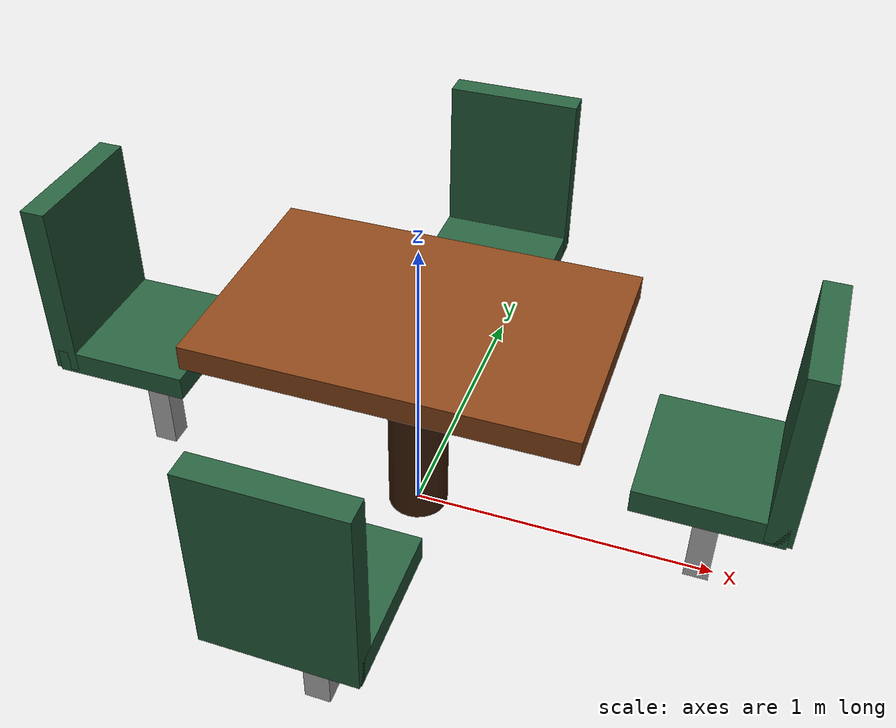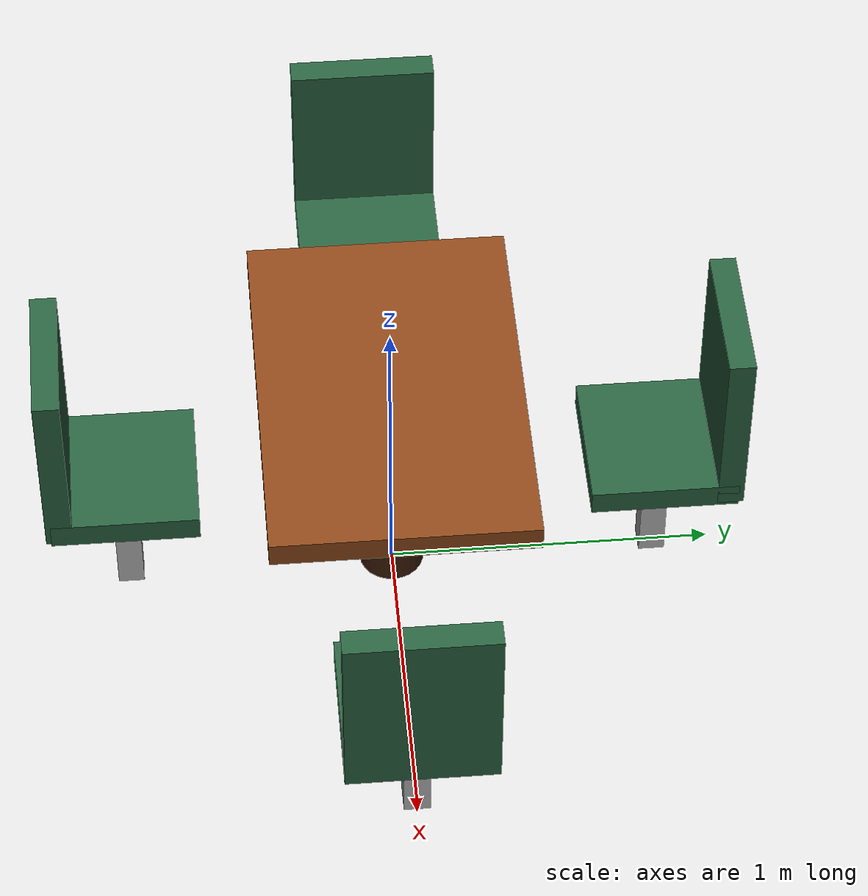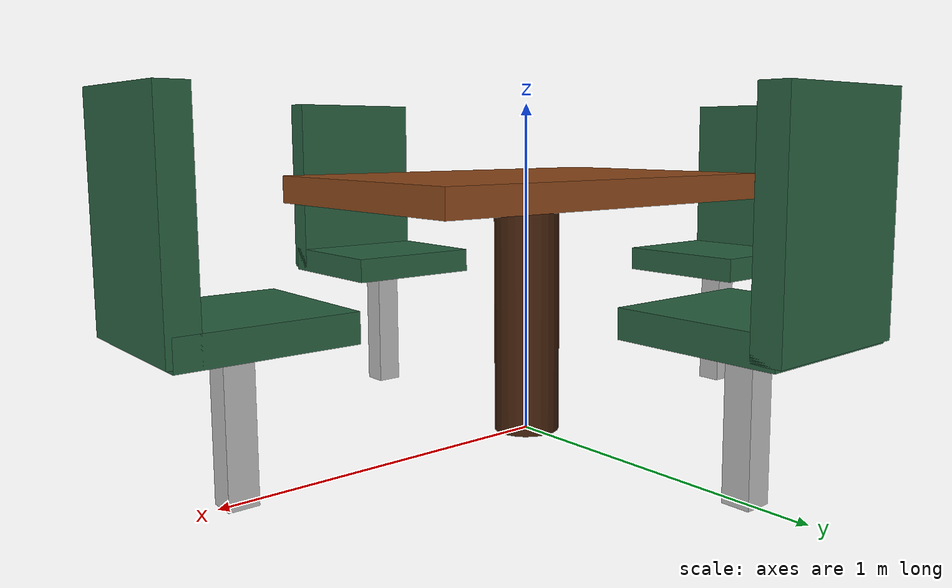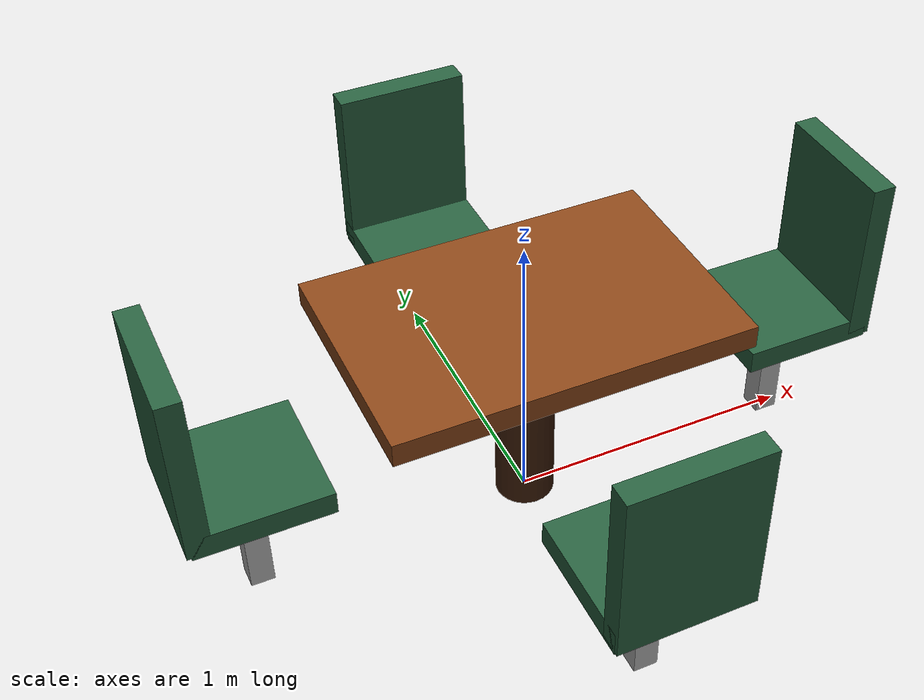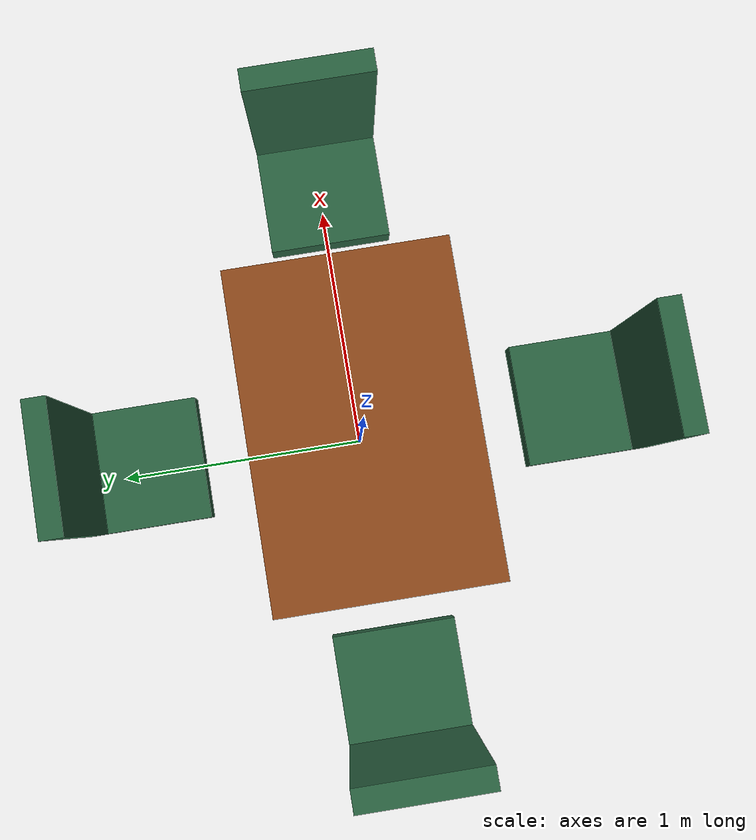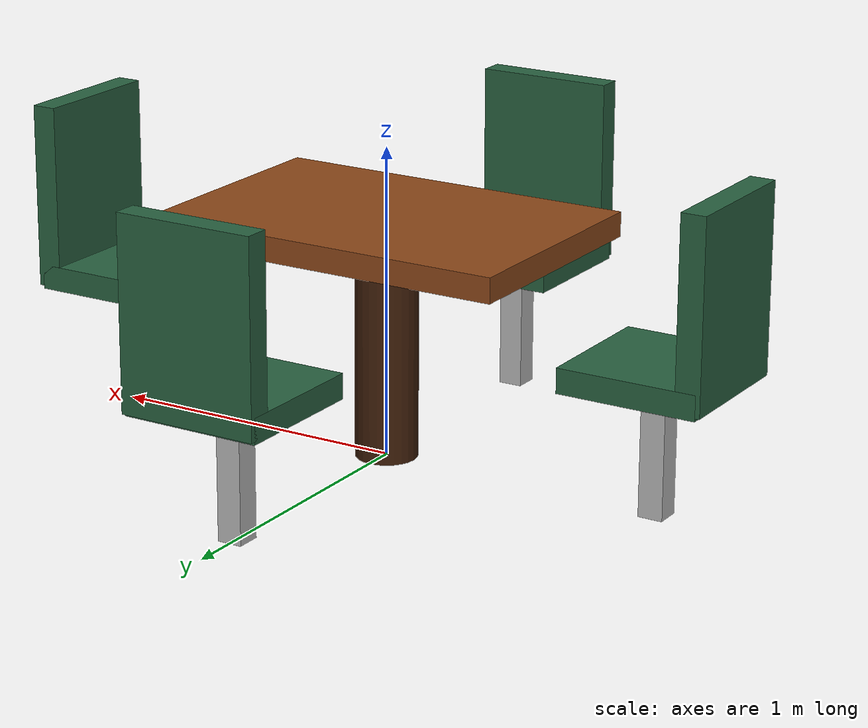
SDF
<?xml version="1.0"?>
<sdf version="1.10">
  <model name="restaurant_table">
    <static>true</static>

    <link name="furniture_link">

      <!-- Volume de collision complet de la table -->
      <collision name="table_collision">
        <pose>0 0 0.38 0 0 0</pose>
        <geometry>
          <box><size>1.2 0.8 0.76</size></box>
        </geometry>
      </collision>

      <!-- Plateau -->
      <visual name="table_top">
        <pose>0 0 0.75 0 0 0</pose>
        <geometry>
          <box><size>1.2 0.8 0.08</size></box>
        </geometry>
        <material>
          <ambient>0.38 0.18 0.07 1</ambient>
          <diffuse>0.55 0.28 0.10 1</diffuse>
        </material>
      </visual>

      <!-- Pied central -->
      <visual name="table_leg">
        <pose>0 0 0.36 0 0 0</pose>
        <geometry>
          <cylinder>
            <radius>0.10</radius>
            <length>0.72</length>
          </cylinder>
        </geometry>
        <material>
          <ambient>0.18 0.08 0.03 1</ambient>
          <diffuse>0.25 0.12 0.04 1</diffuse>
        </material>
      </visual>

      <!-- Chaise nord -->
      <collision name="north_chair_collision">
        <pose>0 0.82 0.4 0 0 0</pose>
        <geometry><box><size>0.45 0.45 0.8</size></box></geometry>
      </collision>
      <visual name="north_chair_seat">
        <pose>0 0.82 0.45 0 0 0</pose>
        <geometry><box><size>0.45 0.45 0.08</size></box></geometry>
        <material>
          <ambient>0.12 0.25 0.18 1</ambient>
          <diffuse>0.16 0.38 0.25 1</diffuse>
        </material>
      </visual>
      <visual name="north_chair_back">
        <pose>0 1.02 0.72 0 0 0</pose>
        <geometry><box><size>0.45 0.08 0.6</size></box></geometry>
        <material>
          <ambient>0.12 0.25 0.18 1</ambient>
          <diffuse>0.16 0.38 0.25 1</diffuse>
        </material>
      </visual>
      <visual name="north_chair_leg">
        <pose>0 0.82 0.21 0 0 0</pose>
        <geometry><box><size>0.08 0.08 0.42</size></box></geometry>
      </visual>

      <!-- Chaise sud -->
      <collision name="south_chair_collision">
        <pose>0 -0.82 0.4 0 0 0</pose>
        <geometry><box><size>0.45 0.45 0.8</size></box></geometry>
      </collision>
      <visual name="south_chair_seat">
        <pose>0 -0.82 0.45 0 0 0</pose>
        <geometry><box><size>0.45 0.45 0.08</size></box></geometry>
        <material>
          <ambient>0.12 0.25 0.18 1</ambient>
          <diffuse>0.16 0.38 0.25 1</diffuse>
        </material>
      </visual>
      <visual name="south_chair_back">
        <pose>0 -1.02 0.72 0 0 0</pose>
        <geometry><box><size>0.45 0.08 0.6</size></box></geometry>
        <material>
          <ambient>0.12 0.25 0.18 1</ambient>
          <diffuse>0.16 0.38 0.25 1</diffuse>
        </material>
      </visual>
      <visual name="south_chair_leg">
        <pose>0 -0.82 0.21 0 0 0</pose>
        <geometry><box><size>0.08 0.08 0.42</size></box></geometry>
      </visual>

      <!-- Chaise est -->
      <collision name="east_chair_collision">
        <pose>0.95 0 0.4 0 0 0</pose>
        <geometry><box><size>0.45 0.45 0.8</size></box></geometry>
      </collision>
      <visual name="east_chair_seat">
        <pose>0.95 0 0.45 0 0 0</pose>
        <geometry><box><size>0.45 0.45 0.08</size></box></geometry>
        <material>
          <ambient>0.12 0.25 0.18 1</ambient>
          <diffuse>0.16 0.38 0.25 1</diffuse>
        </material>
      </visual>
      <visual name="east_chair_back">
        <pose>1.15 0 0.72 0 0 0</pose>
        <geometry><box><size>0.08 0.45 0.6</size></box></geometry>
        <material>
          <ambient>0.12 0.25 0.18 1</ambient>
          <diffuse>0.16 0.38 0.25 1</diffuse>
        </material>
      </visual>
      <visual name="east_chair_leg">
        <pose>0.95 0 0.21 0 0 0</pose>
        <geometry><box><size>0.08 0.08 0.42</size></box></geometry>
      </visual>

      <!-- Chaise ouest -->
      <collision name="west_chair_collision">
        <pose>-0.95 0 0.4 0 0 0</pose>
        <geometry><box><size>0.45 0.45 0.8</size></box></geometry>
      </collision>
      <visual name="west_chair_seat">
        <pose>-0.95 0 0.45 0 0 0</pose>
        <geometry><box><size>0.45 0.45 0.08</size></box></geometry>
        <material>
          <ambient>0.12 0.25 0.18 1</ambient>
          <diffuse>0.16 0.38 0.25 1</diffuse>
        </material>
      </visual>
      <visual name="west_chair_back">
        <pose>-1.15 0 0.72 0 0 0</pose>
        <geometry><box><size>0.08 0.45 0.6</size></box></geometry>
        <material>
          <ambient>0.12 0.25 0.18 1</ambient>
          <diffuse>0.16 0.38 0.25 1</diffuse>
        </material>
      </visual>
      <visual name="west_chair_leg">
        <pose>-0.95 0 0.21 0 0 0</pose>
        <geometry><box><size>0.08 0.08 0.42</size></box></geometry>
      </visual>

    </link>
  </model>
</sdf>
